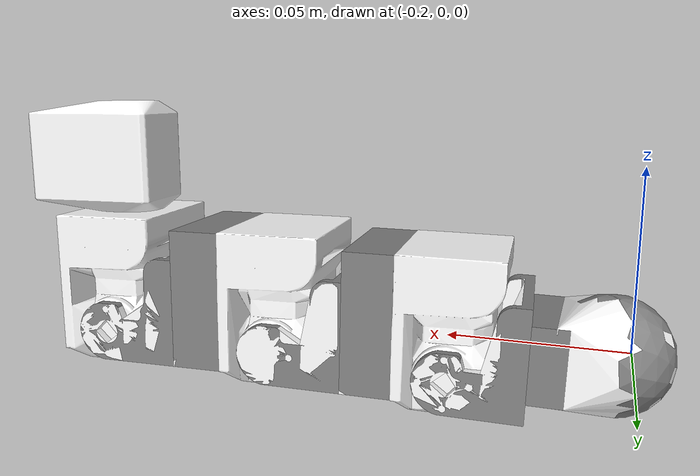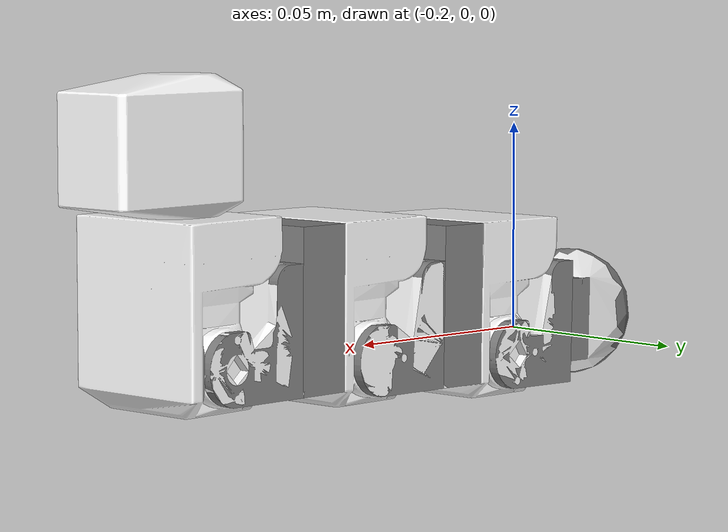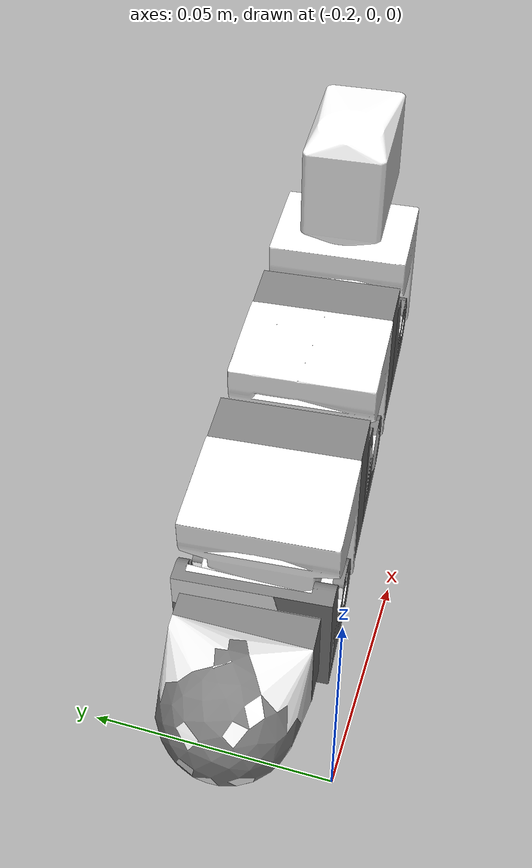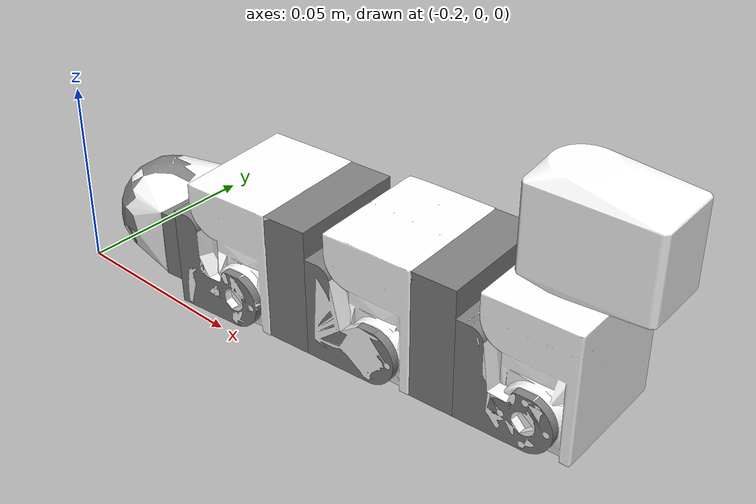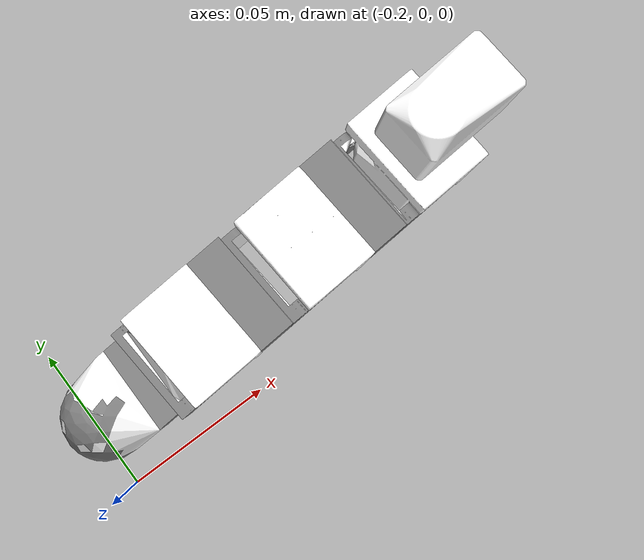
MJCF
<!-- finger.xml -->
<mujoco model="finger">
  <compiler angle="radian"/>
  <asset>
    <!-- Collision Meshes -->
    <mesh name="finger1_palm_servo" file="robot_meshes_fixed/finger1_palm_servo.obj"/>
    <mesh name="finger1_base" file="robot_meshes_fixed/finger1_base.obj"/>
    <mesh name="finger1_bg" file="robot_meshes_fixed/finger1_bg.obj"/>
    <mesh name="finger1_grammar1" file="robot_meshes_fixed/finger1_grammar1.obj"/>
    <mesh name="finger1_middle" file="robot_meshes_fixed/finger1_middle.obj"/>
    <mesh name="finger1_mg" file="robot_meshes_fixed/finger1_mg.obj"/>
    <mesh name="finger1_grammar2" file="robot_meshes_fixed/finger1_grammar2.obj"/>
    <mesh name="finger1_end" file="robot_meshes_fixed/finger1_end.obj"/>
    <mesh name="finger1_eg" file="robot_meshes_fixed/finger1_eg.obj"/>
     <mesh name="finger1_tip_part0" file="robot_meshes_fixed/round_fingertip_part0.obj"/>
     <mesh name="finger1_tip_part1" file="robot_meshes_fixed/round_fingertip_part1.obj"/>

    <!-- Visual Meshes -->
    <mesh name="finger1_palm_servo_vis" file="robot_meshes_fixed/vis_meshes/finger1_palm_servo_vis.obj"/>
    <mesh name="finger1_base_vis" file="robot_meshes_fixed/vis_meshes/finger1_base_vis.obj"/>
    <mesh name="finger1_bg_vis" file="robot_meshes_fixed/vis_meshes/finger1_bg_vis.obj"/>
    <mesh name="finger1_grammar1_vis" file="robot_meshes_fixed/vis_meshes/finger1_grammar1_vis.obj"/>
    <mesh name="finger1_middle_vis" file="robot_meshes_fixed/vis_meshes/finger1_middle_vis.obj"/>
    <mesh name="finger1_mg_vis" file="robot_meshes_fixed/vis_meshes/finger1_mg_vis.obj"/>
    <mesh name="finger1_grammar2_vis" file="robot_meshes_fixed/vis_meshes/finger1_grammar2_vis.obj"/>
    <mesh name="finger1_end_vis" file="robot_meshes_fixed/vis_meshes/finger1_end_vis.obj"/>
    <mesh name="finger1_eg_vis" file="robot_meshes_fixed/vis_meshes/finger1_eg_vis.obj"/>
     <mesh name="finger1_tip_vis" file="robot_meshes_fixed/vis_meshes/round_fingertip_vis.obj"/>
  </asset>

  <default>
      <geom solimp="0.999 0.999 0.001 0.0001 1" solref="0.0001 1" friction=".2" condim="6" margin="0.002"/>
      <joint damping="0.01" frictionloss="0.001" armature="0.0015"/>
      <default class="servo">
        <position kp="0.5" kv="0.01"/>
         <default class="tip"><geom friction="0.2 0.002 0.0001"/></default>
        <default class="hand"><geom friction="0.8 0.01 0.001"/></default>
    </default>

  </default>

  <contact>
    <exclude body1="finger1_base"         body2="palm"/>
    <exclude body1="palm"         body2="finger1_base"/>
    <!-- stop all intra‑finger collisions -->
    <!-- but allow inter-finger collisions -->
    <exclude body1="finger_root"         body2="finger1_palm_servo"/>
    <exclude body1="finger_root"         body2="finger1_base"/>
    <exclude body1="finger_root"         body2="finger1_bg"/>
    <exclude body1="finger_root"         body2="finger1_middle"/>
    <exclude body1="finger_root"         body2="finger1_end"/>
    <exclude body1="finger1_palm_servo"  body2="finger1_base"/>
    <exclude body1="finger1_palm_servo"  body2="finger1_bg"/>
    <exclude body1="finger1_palm_servo"  body2="finger1_middle"/>
    <exclude body1="finger1_palm_servo"  body2="finger1_end"/>
    <exclude body1="finger1_base"        body2="finger1_bg"/>
    <exclude body1="finger1_base"        body2="finger1_middle"/>
    <exclude body1="finger1_base"        body2="finger1_end"/>
    <exclude body1="finger1_bg"          body2="finger1_middle"/>
    <exclude body1="finger1_bg"          body2="finger1_end"/>
    <exclude body1="finger1_middle"      body2="finger1_end"/>
  </contact>

  <worldbody>
    <body name="finger_root" pos="0 0 0">
      <body name="finger1_palm_servo" pos="0 0 0">
            <geom name="finger1_palm_servo_geom" type="mesh" mesh="finger1_palm_servo" group="1" rgba="1 1 1 1"/>
            <geom name="finger1_palm_servo_vis_geom" type="mesh" mesh="finger1_palm_servo_vis" group="0" contype="0" conaffinity="0"/>
            <body name="finger1_base" pos="0 0 0">
                <joint name="finger1_palm_joint" type="hinge" pos="-0.06832 0.03225 0.06643" axis="0 0 1" range="-0.698 0.698" limited="true"/>
                <geom name="finger1_base_geom" type="mesh" mesh="finger1_base" group="1" rgba="1 1 1 1"/>
                <geom name="finger1_base_vis_geom" type="mesh" mesh="finger1_base_vis" group="0" contype="0" conaffinity="0"/>
                <body name="finger1_bg" pos="0 0 0">
                    <joint name="finger1_base_joint" type="hinge" pos="-0.06945 0.04928 0.00731" axis="0.0755057 -0.99714537 0" range="0 1.5708" limited="true"/>
                    <geom name="finger1_bg_geom" type="mesh" mesh="finger1_bg" group="1" rgba="1 1 1 1"/>
                    <geom name="finger1_bg_vis_geom" type="mesh" mesh="finger1_bg_vis" group="0" contype="0" conaffinity="0"/>
                    <body name="finger1_grammar1" pos="0 0 0">
                        <geom name="finger1_grammar1_geom" type="mesh" mesh="finger1_grammar1" group="1" rgba="1 1 1 1"/>
                        <geom name="finger1_grammar1_vis_geom" type="mesh" mesh="finger1_grammar1_vis" group="0" contype="0" conaffinity="0"/>
                        <body name="finger1_middle" pos="0 0 0">
                            <geom name="finger1_middle_geom" type="mesh" mesh="finger1_middle" group="1" rgba="1 1 1 1"/>
                            <geom name="finger1_middle_vis_geom" type="mesh" mesh="finger1_middle_vis" group="0" contype="0" conaffinity="0"/>
                            <body name="finger1_mg" pos="0 0 0">
                                <joint name="finger1_middle_joint" type="hinge" pos="-0.11093 0.01206 0.00464" axis="0.07552783 -0.99714369 0" range="0 1.5708" limited="true"/>
                                <geom name="finger1_mg_geom" type="mesh" mesh="finger1_mg" group="1" rgba="1 1 1 1"/>
                                <geom name="finger1_mg_vis_geom" type="mesh" mesh="finger1_mg_vis" group="0" contype="0" conaffinity="0"/>
                                <body name="finger1_grammar2" pos="0 0 0">
                                    <geom name="finger1_grammar2_geom" type="mesh" mesh="finger1_grammar2" group="1" rgba="1 1 1 1"/>
                                    <geom name="finger1_grammar2_vis_geom" type="mesh" mesh="finger1_grammar2_vis" group="0" contype="0" conaffinity="0"/>
                                    <body name="finger1_end" pos="0 0 0">
                                        <geom name="finger1_end_geom" type="mesh" mesh="finger1_end" group="1" rgba="1 1 1 1"/>
                                        <geom name="finger1_end_vis_geom" type="mesh" mesh="finger1_end_vis" group="0" contype="0" conaffinity="0"/>
                                        <body name="finger1_eg" pos="0 0 0">
                                            <joint name="finger1_end_joint" type="hinge" pos="-0.15752 0.04271 0.00154" axis="0.0755057 -0.99714537 0" range="0 1.5708" limited="true"/>
                                            <geom name="finger1_eg" type="mesh" mesh="finger1_eg" group="1" rgba="1 1 1 1"/>
                                            <geom name="finger1_eg_vis" type="mesh" mesh="finger1_eg_vis" group="0" contype="0" conaffinity="0"/>
                                            <body name="finger1_tip" pos="0 0 0">
                                                <geom class="tip" name="finger1_tip_geom_0" type="mesh" mesh="finger1_tip_part0" group="1" rgba="1 1 1 1"/>
                                                <geom class="tip" name="finger1_tip_geom_1" type="mesh" mesh="finger1_tip_part1" group="1" rgba="1 1 1 1"/>
                                                <geom name="finger1_tip_vis_geom" type="mesh" mesh="finger1_tip_vis" group="0" contype="0" conaffinity="0"/>
                                            </body>
                                        </body>
                                    </body>
                                </body>
                            </body>
                        </body>
                    </body>
                </body>
            </body>
        </body>
    </body>

  </worldbody>

  <actuator>
    <position name="finger_palm_joint" class="servo" joint="finger1_palm_joint" forcerange="-0.8 0.8" inheritrange="1"/>
    <position name="finger_base_joint" class="servo" joint="finger1_base_joint" forcerange="-0.8 0.8" inheritrange="1"/>
    <position name="finger_middle_joint" class="servo" joint="finger1_middle_joint" forcerange="-0.80 0.80" inheritrange="1"/>
    <position name="finger_end_joint" class="servo" joint="finger1_end_joint" forcerange="-0.3 0.3" inheritrange="1"/>
  </actuator>
</mujoco>
